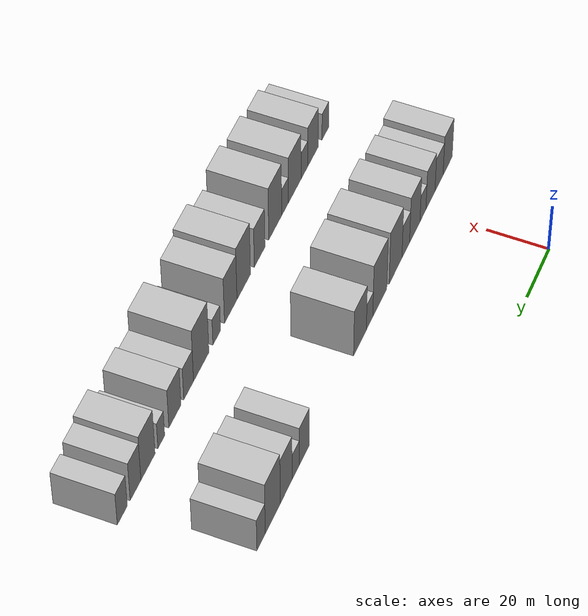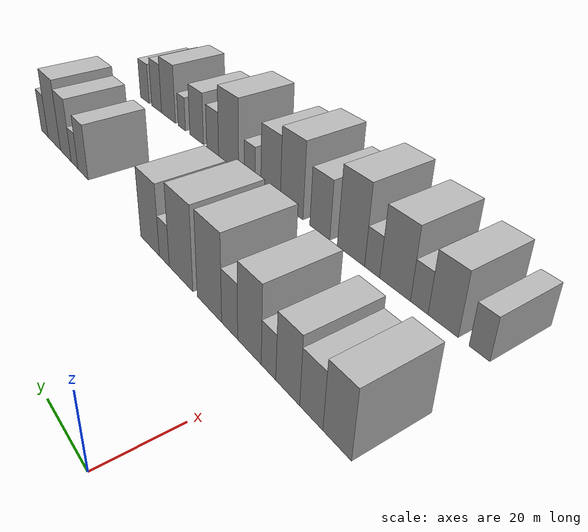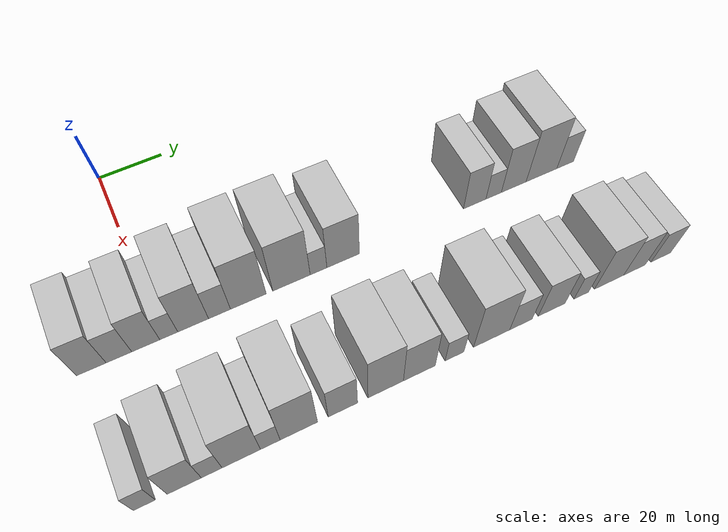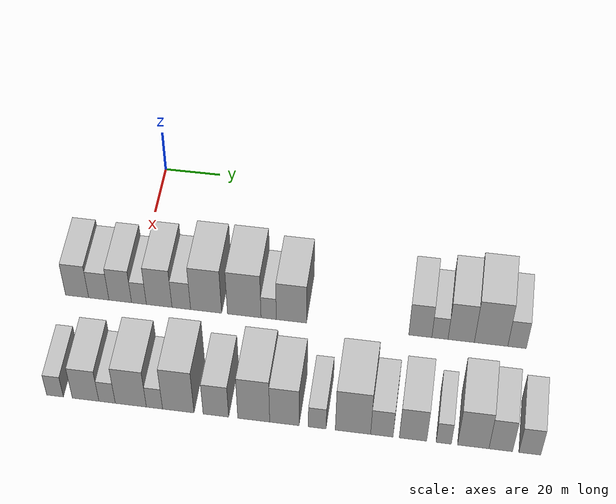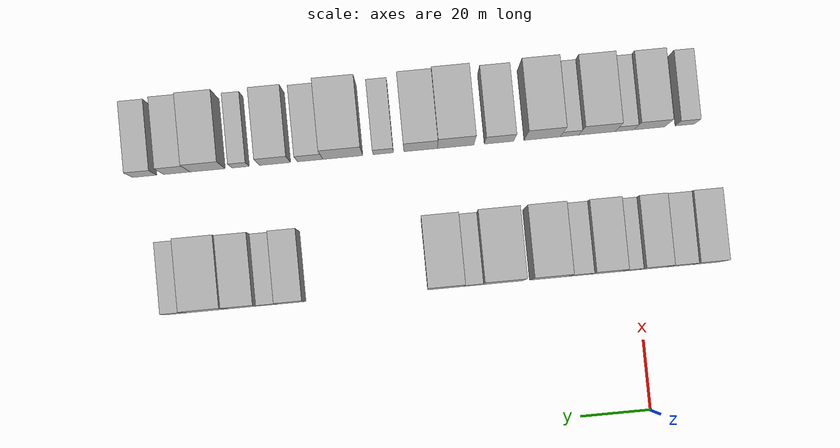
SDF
<sdf version="1.6">
 <world name="default">
  <model name="building_31">
   <static>1</static>
   <pose>50.0000 -19.6068 0 0.000000 0.000000 0.000000</pose>
   <link name="link">
    <pose>0 0 9.00 0 0 0</pose>
    <collision name="collision"><geometry><box><size>20.0000 8.1047 18.0000</size></box></geometry></collision>
    <visual name="visual">
     <cast_shadows>0</cast_shadows>
     <geometry><box><size>20.0000 8.1047 18.0000</size></box></geometry>
     <material>
      <script>
       <uri>model://HANNAS_wall/materials/scripts</uri>
       <uri>model://HANNAS_wall/materials/textures</uri>
       <name>vrc/HANNAS_wall</name>
      </script>
     </material>
    </visual>
   </link>
  </model>
  <model name="building_32">
   <static>1</static>
   <pose>50.0000 -12.0020 0 0.000000 0.000000 0.000000</pose>
   <link name="link">
    <pose>0 0 7.50 0 0 0</pose>
    <collision name="collision"><geometry><box><size>20.0000 7.1049 15.0000</size></box></geometry></collision>
    <visual name="visual">
     <cast_shadows>0</cast_shadows>
     <geometry><box><size>20.0000 7.1049 15.0000</size></box></geometry>
     <material>
      <script>
       <uri>model://HANNAS_wall/materials/scripts</uri>
       <uri>model://HANNAS_wall/materials/textures</uri>
       <name>vrc/HANNAS_wall</name>
      </script>
     </material>
    </visual>
   </link>
  </model>
  <model name="building_33">
   <static>1</static>
   <pose>50.0000 -4.5010 0 0.000000 0.000000 0.000000</pose>
   <link name="link">
    <pose>0 0 9.00 0 0 0</pose>
    <collision name="collision"><geometry><box><size>20.0000 7.8972 18.0000</size></box></geometry></collision>
    <visual name="visual">
     <cast_shadows>0</cast_shadows>
     <geometry><box><size>20.0000 7.8972 18.0000</size></box></geometry>
     <material>
      <script>
       <uri>model://HANNAS_wall/materials/scripts</uri>
       <uri>model://HANNAS_wall/materials/textures</uri>
       <name>vrc/HANNAS_wall</name>
      </script>
     </material>
    </visual>
   </link>
  </model>
  <model name="building_34">
   <static>1</static>
   <pose>50.0000 2.0246 0 0.000000 0.000000 0.000000</pose>
   <link name="link">
    <pose>0 0 6.00 0 0 0</pose>
    <collision name="collision"><geometry><box><size>20.0000 5.1541 12.0000</size></box></geometry></collision>
    <visual name="visual">
     <cast_shadows>0</cast_shadows>
     <geometry><box><size>20.0000 5.1541 12.0000</size></box></geometry>
     <material>
      <script>
       <uri>model://HANNAS_wall/materials/scripts</uri>
       <uri>model://HANNAS_wall/materials/textures</uri>
       <name>vrc/HANNAS_wall</name>
      </script>
     </material>
    </visual>
   </link>
  </model>
  <model name="building_35">
   <static>1</static>
   <pose>50.0000 9.0634 0 0.000000 0.000000 0.000000</pose>
   <link name="link">
    <pose>0 0 10.50 0 0 0</pose>
    <collision name="collision"><geometry><box><size>20.0000 8.9235 21.0000</size></box></geometry></collision>
    <visual name="visual">
     <cast_shadows>0</cast_shadows>
     <geometry><box><size>20.0000 8.9235 21.0000</size></box></geometry>
     <material>
      <script>
       <uri>model://HANNAS_wall/materials/scripts</uri>
       <uri>model://HANNAS_wall/materials/textures</uri>
       <name>vrc/HANNAS_wall</name>
      </script>
     </material>
    </visual>
   </link>
  </model>
  <model name="building_36">
   <static>1</static>
   <pose>50.0000 16.7564 0 0.000000 0.000000 0.000000</pose>
   <link name="link">
    <pose>0 0 7.50 0 0 0</pose>
    <collision name="collision"><geometry><box><size>20.0000 6.4625 15.0000</size></box></geometry></collision>
    <visual name="visual">
     <cast_shadows>0</cast_shadows>
     <geometry><box><size>20.0000 6.4625 15.0000</size></box></geometry>
     <material>
      <script>
       <uri>model://HANNAS_wall/materials/scripts</uri>
       <uri>model://HANNAS_wall/materials/textures</uri>
       <name>vrc/HANNAS_wall</name>
      </script>
     </material>
    </visual>
   </link>
  </model>
  <model name="building_37">
   <static>1</static>
   <pose>50.0000 25.3487 0 0.000000 0.000000 0.000000</pose>
   <link name="link">
    <pose>0 0 12.00 0 0 0</pose>
    <collision name="collision"><geometry><box><size>20.0000 10.7221 24.0000</size></box></geometry></collision>
    <visual name="visual">
     <cast_shadows>0</cast_shadows>
     <geometry><box><size>20.0000 10.7221 24.0000</size></box></geometry>
     <material>
      <script>
       <uri>model://HANNAS_wall/materials/scripts</uri>
       <uri>model://HANNAS_wall/materials/textures</uri>
       <name>vrc/HANNAS_wall</name>
      </script>
     </material>
    </visual>
   </link>
  </model>
  <model name="building_38">
   <static>1</static>
   <pose>50.0000 38.4899 0 0.000000 0.000000 0.000000</pose>
   <link name="link">
    <pose>0 0 12.00 0 0 0</pose>
    <collision name="collision"><geometry><box><size>20.0000 11.5604 24.0000</size></box></geometry></collision>
    <visual name="visual">
     <cast_shadows>0</cast_shadows>
     <geometry><box><size>20.0000 11.5604 24.0000</size></box></geometry>
     <material>
      <script>
       <uri>model://HANNAS_wall/materials/scripts</uri>
       <uri>model://HANNAS_wall/materials/textures</uri>
       <name>vrc/HANNAS_wall</name>
      </script>
     </material>
    </visual>
   </link>
  </model>
  <model name="building_39">
   <static>1</static>
   <pose>50.0000 46.8891 0 0.000000 0.000000 0.000000</pose>
   <link name="link">
    <pose>0 0 6.00 0 0 0</pose>
    <collision name="collision"><geometry><box><size>20.0000 5.2379 12.0000</size></box></geometry></collision>
    <visual name="visual">
     <cast_shadows>0</cast_shadows>
     <geometry><box><size>20.0000 5.2379 12.0000</size></box></geometry>
     <material>
      <script>
       <uri>model://HANNAS_wall/materials/scripts</uri>
       <uri>model://HANNAS_wall/materials/textures</uri>
       <name>vrc/HANNAS_wall</name>
      </script>
     </material>
    </visual>
   </link>
  </model>
  <model name="building_40">
   <static>1</static>
   <pose>50.0000 54.6845 0 0.000000 0.000000 0.000000</pose>
   <link name="link">
    <pose>0 0 10.50 0 0 0</pose>
    <collision name="collision"><geometry><box><size>20.0000 10.3529 21.0000</size></box></geometry></collision>
    <visual name="visual">
     <cast_shadows>0</cast_shadows>
     <geometry><box><size>20.0000 10.3529 21.0000</size></box></geometry>
     <material>
      <script>
       <uri>model://HANNAS_wall/materials/scripts</uri>
       <uri>model://HANNAS_wall/materials/textures</uri>
       <name>vrc/HANNAS_wall</name>
      </script>
     </material>
    </visual>
   </link>
  </model>
  <model name="building_41">
   <static>1</static>
   <pose>50.0000 98.5594 0 0.000000 0.000000 0.000000</pose>
   <link name="link">
    <pose>0 0 9.00 0 0 0</pose>
    <collision name="collision"><geometry><box><size>20.0000 7.7990 18.0000</size></box></geometry></collision>
    <visual name="visual">
     <cast_shadows>0</cast_shadows>
     <geometry><box><size>20.0000 7.7990 18.0000</size></box></geometry>
     <material>
      <script>
       <uri>model://HANNAS_wall/materials/scripts</uri>
       <uri>model://HANNAS_wall/materials/textures</uri>
       <name>vrc/HANNAS_wall</name>
      </script>
     </material>
    </visual>
   </link>
  </model>
  <model name="building_42">
   <static>1</static>
   <pose>50.0000 105.1800 0 0.000000 0.000000 0.000000</pose>
   <link name="link">
    <pose>0 0 6.00 0 0 0</pose>
    <collision name="collision"><geometry><box><size>20.0000 5.4422 12.0000</size></box></geometry></collision>
    <visual name="visual">
     <cast_shadows>0</cast_shadows>
     <geometry><box><size>20.0000 5.4422 12.0000</size></box></geometry>
     <material>
      <script>
       <uri>model://HANNAS_wall/materials/scripts</uri>
       <uri>model://HANNAS_wall/materials/textures</uri>
       <name>vrc/HANNAS_wall</name>
      </script>
     </material>
    </visual>
   </link>
  </model>
  <model name="building_43">
   <static>1</static>
   <pose>50.0000 112.3413 0 0.000000 0.000000 0.000000</pose>
   <link name="link">
    <pose>0 0 10.50 0 0 0</pose>
    <collision name="collision"><geometry><box><size>20.0000 8.8804 21.0000</size></box></geometry></collision>
    <visual name="visual">
     <cast_shadows>0</cast_shadows>
     <geometry><box><size>20.0000 8.8804 21.0000</size></box></geometry>
     <material>
      <script>
       <uri>model://HANNAS_wall/materials/scripts</uri>
       <uri>model://HANNAS_wall/materials/textures</uri>
       <name>vrc/HANNAS_wall</name>
      </script>
     </material>
    </visual>
   </link>
  </model>
  <model name="building_44">
   <static>1</static>
   <pose>50.0000 122.3902 0 0.000000 0.000000 0.000000</pose>
   <link name="link">
    <pose>0 0 12.00 0 0 0</pose>
    <collision name="collision"><geometry><box><size>20.0000 11.2172 24.0000</size></box></geometry></collision>
    <visual name="visual">
     <cast_shadows>0</cast_shadows>
     <geometry><box><size>20.0000 11.2172 24.0000</size></box></geometry>
     <material>
      <script>
       <uri>model://HANNAS_wall/materials/scripts</uri>
       <uri>model://HANNAS_wall/materials/textures</uri>
       <name>vrc/HANNAS_wall</name>
      </script>
     </material>
    </visual>
   </link>
  </model>
  <model name="building_45">
   <static>1</static>
   <pose>50.0000 131.1028 0 0.000000 0.000000 0.000000</pose>
   <link name="link">
    <pose>0 0 7.50 0 0 0</pose>
    <collision name="collision"><geometry><box><size>20.0000 6.2081 15.0000</size></box></geometry></collision>
    <visual name="visual">
     <cast_shadows>0</cast_shadows>
     <geometry><box><size>20.0000 6.2081 15.0000</size></box></geometry>
     <material>
      <script>
       <uri>model://HANNAS_wall/materials/scripts</uri>
       <uri>model://HANNAS_wall/materials/textures</uri>
       <name>vrc/HANNAS_wall</name>
      </script>
     </material>
    </visual>
   </link>
  </model>
  <model name="building_92">
   <static>1</static>
   <pose>90.0000 -17.9194 0 0.000000 0.000000 0.000000</pose>
   <link name="link">
    <pose>0 0 6.00 0 0 0</pose>
    <collision name="collision"><geometry><box><size>20.0000 5.5938 12.0000</size></box></geometry></collision>
    <visual name="visual">
     <cast_shadows>0</cast_shadows>
     <geometry><box><size>20.0000 5.5938 12.0000</size></box></geometry>
     <material>
      <script>
       <uri>model://HANNAS_wall/materials/scripts</uri>
       <uri>model://HANNAS_wall/materials/textures</uri>
       <name>vrc/HANNAS_wall</name>
      </script>
     </material>
    </visual>
   </link>
  </model>
  <model name="building_93">
   <static>1</static>
   <pose>90.0000 -7.6824 0 0.000000 0.000000 0.000000</pose>
   <link name="link">
    <pose>0 0 9.00 0 0 0</pose>
    <collision name="collision"><geometry><box><size>20.0000 8.8802 18.0000</size></box></geometry></collision>
    <visual name="visual">
     <cast_shadows>0</cast_shadows>
     <geometry><box><size>20.0000 8.8802 18.0000</size></box></geometry>
     <material>
      <script>
       <uri>model://HANNAS_wall/materials/scripts</uri>
       <uri>model://HANNAS_wall/materials/textures</uri>
       <name>vrc/HANNAS_wall</name>
      </script>
     </material>
    </visual>
   </link>
  </model>
  <model name="building_94">
   <static>1</static>
   <pose>90.0000 -0.5078 0 0.000000 0.000000 0.000000</pose>
   <link name="link">
    <pose>0 0 6.00 0 0 0</pose>
    <collision name="collision"><geometry><box><size>20.0000 5.4689 12.0000</size></box></geometry></collision>
    <visual name="visual">
     <cast_shadows>0</cast_shadows>
     <geometry><box><size>20.0000 5.4689 12.0000</size></box></geometry>
     <material>
      <script>
       <uri>model://HANNAS_wall/materials/scripts</uri>
       <uri>model://HANNAS_wall/materials/textures</uri>
       <name>vrc/HANNAS_wall</name>
      </script>
     </material>
    </visual>
   </link>
  </model>
  <model name="building_95">
   <static>1</static>
   <pose>90.0000 7.3962 0 0.000000 0.000000 0.000000</pose>
   <link name="link">
    <pose>0 0 10.50 0 0 0</pose>
    <collision name="collision"><geometry><box><size>20.0000 10.3393 21.0000</size></box></geometry></collision>
    <visual name="visual">
     <cast_shadows>0</cast_shadows>
     <geometry><box><size>20.0000 10.3393 21.0000</size></box></geometry>
     <material>
      <script>
       <uri>model://HANNAS_wall/materials/scripts</uri>
       <uri>model://HANNAS_wall/materials/textures</uri>
       <name>vrc/HANNAS_wall</name>
      </script>
     </material>
    </visual>
   </link>
  </model>
  <model name="building_96">
   <static>1</static>
   <pose>90.0000 15.2545 0 0.000000 0.000000 0.000000</pose>
   <link name="link">
    <pose>0 0 6.00 0 0 0</pose>
    <collision name="collision"><geometry><box><size>20.0000 5.3772 12.0000</size></box></geometry></collision>
    <visual name="visual">
     <cast_shadows>0</cast_shadows>
     <geometry><box><size>20.0000 5.3772 12.0000</size></box></geometry>
     <material>
      <script>
       <uri>model://HANNAS_wall/materials/scripts</uri>
       <uri>model://HANNAS_wall/materials/textures</uri>
       <name>vrc/HANNAS_wall</name>
      </script>
     </material>
    </visual>
   </link>
  </model>
  <model name="building_97">
   <static>1</static>
   <pose>90.0000 23.1476 0 0.000000 0.000000 0.000000</pose>
   <link name="link">
    <pose>0 0 12.00 0 0 0</pose>
    <collision name="collision"><geometry><box><size>20.0000 10.4091 24.0000</size></box></geometry></collision>
    <visual name="visual">
     <cast_shadows>0</cast_shadows>
     <geometry><box><size>20.0000 10.4091 24.0000</size></box></geometry>
     <material>
      <script>
       <uri>model://HANNAS_wall/materials/scripts</uri>
       <uri>model://HANNAS_wall/materials/textures</uri>
       <name>vrc/HANNAS_wall</name>
      </script>
     </material>
    </visual>
   </link>
  </model>
  <model name="building_98">
   <static>1</static>
   <pose>90.0000 35.5599 0 0.000000 0.000000 0.000000</pose>
   <link name="link">
    <pose>0 0 9.00 0 0 0</pose>
    <collision name="collision"><geometry><box><size>20.0000 8.4156 18.0000</size></box></geometry></collision>
    <visual name="visual">
     <cast_shadows>0</cast_shadows>
     <geometry><box><size>20.0000 8.4156 18.0000</size></box></geometry>
     <material>
      <script>
       <uri>model://HANNAS_wall/materials/scripts</uri>
       <uri>model://HANNAS_wall/materials/textures</uri>
       <name>vrc/HANNAS_wall</name>
      </script>
     </material>
    </visual>
   </link>
  </model>
  <model name="building_99">
   <static>1</static>
   <pose>90.0000 48.0011 0 0.000000 0.000000 0.000000</pose>
   <link name="link">
    <pose>0 0 12.00 0 0 0</pose>
    <collision name="collision"><geometry><box><size>20.0000 10.4667 24.0000</size></box></geometry></collision>
    <visual name="visual">
     <cast_shadows>0</cast_shadows>
     <geometry><box><size>20.0000 10.4667 24.0000</size></box></geometry>
     <material>
      <script>
       <uri>model://HANNAS_wall/materials/scripts</uri>
       <uri>model://HANNAS_wall/materials/textures</uri>
       <name>vrc/HANNAS_wall</name>
      </script>
     </material>
    </visual>
   </link>
  </model>
  <model name="building_100">
   <static>1</static>
   <pose>90.0000 58.0414 0 0.000000 0.000000 0.000000</pose>
   <link name="link">
    <pose>0 0 10.50 0 0 0</pose>
    <collision name="collision"><geometry><box><size>20.0000 9.6138 21.0000</size></box></geometry></collision>
    <visual name="visual">
     <cast_shadows>0</cast_shadows>
     <geometry><box><size>20.0000 9.6138 21.0000</size></box></geometry>
     <material>
      <script>
       <uri>model://HANNAS_wall/materials/scripts</uri>
       <uri>model://HANNAS_wall/materials/textures</uri>
       <name>vrc/HANNAS_wall</name>
      </script>
     </material>
    </visual>
   </link>
  </model>
  <model name="building_101">
   <static>1</static>
   <pose>90.0000 68.7507 0 0.000000 0.000000 0.000000</pose>
   <link name="link">
    <pose>0 0 6.00 0 0 0</pose>
    <collision name="collision"><geometry><box><size>20.0000 5.8049 12.0000</size></box></geometry></collision>
    <visual name="visual">
     <cast_shadows>0</cast_shadows>
     <geometry><box><size>20.0000 5.8049 12.0000</size></box></geometry>
     <material>
      <script>
       <uri>model://HANNAS_wall/materials/scripts</uri>
       <uri>model://HANNAS_wall/materials/textures</uri>
       <name>vrc/HANNAS_wall</name>
      </script>
     </material>
    </visual>
   </link>
  </model>
  <model name="building_102">
   <static>1</static>
   <pose>90.0000 80.3882 0 0.000000 0.000000 0.000000</pose>
   <link name="link">
    <pose>0 0 12.00 0 0 0</pose>
    <collision name="collision"><geometry><box><size>20.0000 11.4701 24.0000</size></box></geometry></collision>
    <visual name="visual">
     <cast_shadows>0</cast_shadows>
     <geometry><box><size>20.0000 11.4701 24.0000</size></box></geometry>
     <material>
      <script>
       <uri>model://HANNAS_wall/materials/scripts</uri>
       <uri>model://HANNAS_wall/materials/textures</uri>
       <name>vrc/HANNAS_wall</name>
      </script>
     </material>
    </visual>
   </link>
  </model>
  <model name="building_103">
   <static>1</static>
   <pose>90.0000 89.7596 0 0.000000 0.000000 0.000000</pose>
   <link name="link">
    <pose>0 0 7.50 0 0 0</pose>
    <collision name="collision"><geometry><box><size>20.0000 7.2728 15.0000</size></box></geometry></collision>
    <visual name="visual">
     <cast_shadows>0</cast_shadows>
     <geometry><box><size>20.0000 7.2728 15.0000</size></box></geometry>
     <material>
      <script>
       <uri>model://HANNAS_wall/materials/scripts</uri>
       <uri>model://HANNAS_wall/materials/textures</uri>
       <name>vrc/HANNAS_wall</name>
      </script>
     </material>
    </visual>
   </link>
  </model>
  <model name="building_104">
   <static>1</static>
   <pose>90.0000 99.8215 0 0.000000 0.000000 0.000000</pose>
   <link name="link">
    <pose>0 0 9.00 0 0 0</pose>
    <collision name="collision"><geometry><box><size>20.0000 8.8509 18.0000</size></box></geometry></collision>
    <visual name="visual">
     <cast_shadows>0</cast_shadows>
     <geometry><box><size>20.0000 8.8509 18.0000</size></box></geometry>
     <material>
      <script>
       <uri>model://HANNAS_wall/materials/scripts</uri>
       <uri>model://HANNAS_wall/materials/textures</uri>
       <name>vrc/HANNAS_wall</name>
      </script>
     </material>
    </visual>
   </link>
  </model>
  <model name="building_105">
   <static>1</static>
   <pose>90.0000 109.7082 0 0.000000 0.000000 0.000000</pose>
   <link name="link">
    <pose>0 0 6.00 0 0 0</pose>
    <collision name="collision"><geometry><box><size>20.0000 4.9226 12.0000</size></box></geometry></collision>
    <visual name="visual">
     <cast_shadows>0</cast_shadows>
     <geometry><box><size>20.0000 4.9226 12.0000</size></box></geometry>
     <material>
      <script>
       <uri>model://HANNAS_wall/materials/scripts</uri>
       <uri>model://HANNAS_wall/materials/textures</uri>
       <name>vrc/HANNAS_wall</name>
      </script>
     </material>
    </visual>
   </link>
  </model>
  <model name="building_106">
   <static>1</static>
   <pose>90.0000 119.2009 0 0.000000 0.000000 0.000000</pose>
   <link name="link">
    <pose>0 0 10.50 0 0 0</pose>
    <collision name="collision"><geometry><box><size>20.0000 10.0628 21.0000</size></box></geometry></collision>
    <visual name="visual">
     <cast_shadows>0</cast_shadows>
     <geometry><box><size>20.0000 10.0628 21.0000</size></box></geometry>
     <material>
      <script>
       <uri>model://HANNAS_wall/materials/scripts</uri>
       <uri>model://HANNAS_wall/materials/textures</uri>
       <name>vrc/HANNAS_wall</name>
      </script>
     </material>
    </visual>
   </link>
  </model>
  <model name="building_107">
   <static>1</static>
   <pose>90.0000 128.0181 0 0.000000 0.000000 0.000000</pose>
   <link name="link">
    <pose>0 0 9.00 0 0 0</pose>
    <collision name="collision"><geometry><box><size>20.0000 7.5715 18.0000</size></box></geometry></collision>
    <visual name="visual">
     <cast_shadows>0</cast_shadows>
     <geometry><box><size>20.0000 7.5715 18.0000</size></box></geometry>
     <material>
      <script>
       <uri>model://HANNAS_wall/materials/scripts</uri>
       <uri>model://HANNAS_wall/materials/textures</uri>
       <name>vrc/HANNAS_wall</name>
      </script>
     </material>
    </visual>
   </link>
  </model>
  <model name="building_108">
   <static>1</static>
   <pose>90.0000 137.2961 0 0.000000 0.000000 0.000000</pose>
   <link name="link">
    <pose>0 0 7.50 0 0 0</pose>
    <collision name="collision"><geometry><box><size>20.0000 6.9845 15.0000</size></box></geometry></collision>
    <visual name="visual">
     <cast_shadows>0</cast_shadows>
     <geometry><box><size>20.0000 6.9845 15.0000</size></box></geometry>
     <material>
      <script>
       <uri>model://HANNAS_wall/materials/scripts</uri>
       <uri>model://HANNAS_wall/materials/textures</uri>
       <name>vrc/HANNAS_wall</name>
      </script>
     </material>
    </visual>
   </link>
  </model>
 </world>
</sdf>
